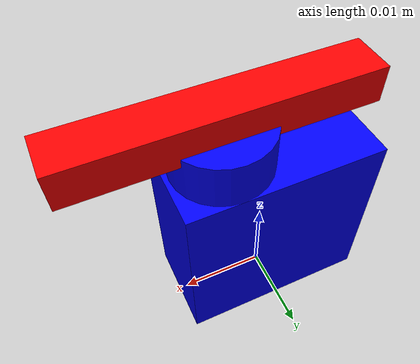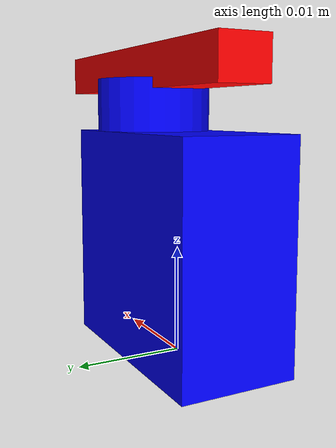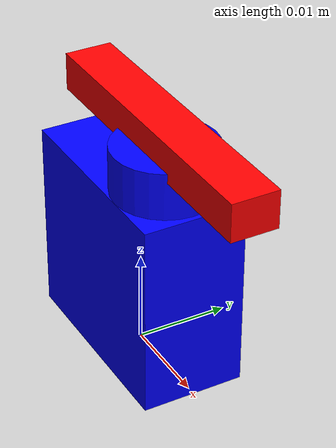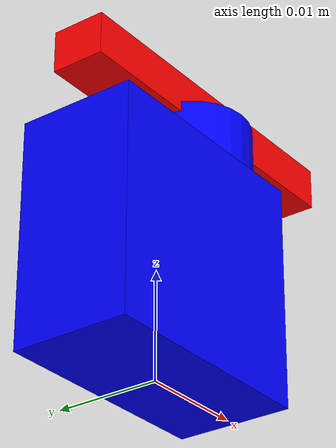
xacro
<?xml version="1.0"?>
<!-- S90 - servo motor -->

<robot xmlns:xacro="http://www.ros.org/wiki/xacro" name="S90_servo">
  <xacro:arg name="prefix" default="" />

  <!-- Import micro_servo S90 macro -->
  <xacro:include filename="$(find ros2_servo_motion)/urdf/servo.urdf.xacro" />

  <!-- Import RRBot ros2_control description -->
  <xacro:include filename="$(find ros2_servo_motion)/urdf/servo.ros2_control.xacro" />

  <!-- Used for fixing robot -->
  <link name="world"/>

  <xacro:micro_servo parent="world" prefix="$(arg prefix)">
    <origin xyz="0 0 0" rpy="0 0 0" />
  </xacro:micro_servo>

  <xacro:S90_servo_ros2_control
    name="S90_servo_control"/>

</robot>

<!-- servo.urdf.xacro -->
<robot xmlns:xacro="http://ros.org/wiki/xacro">

  <xacro:macro name="micro_servo" params="parent prefix *origin">

  <!-- Physical Material Macros -->
  <material name="Red">
    <color rgba="1.0 0 0 1.0" />
  </material>
  <material name="Green">
    <color rgba="0 1.0 0 1.0" />
  </material>
  <material name="Blue">
    <color rgba="0 0 1.0 1" />
  </material>
  <material name="Black">
    <color rgba="0 0 0 1.0" />
  </material>

  <xacro:property name="servo_length" value="0.022" />
  <xacro:property name="servo_width" value="0.011" />
  <xacro:property name="servo_heigth" value="0.021" />
  <xacro:property name="support_radius" value="${servo_width/2}" />
  <xacro:property name="support_heigth" value="0.005" />
  <xacro:property name="rot_link_length" value="0.032" />
  <xacro:property name="rot_link_width" value="0.005" />
  <xacro:property name="rot_link_heigth" value="0.004" />

  <joint name="${prefix}base_joint" type="fixed">
    <xacro:insert_block name="origin" />
    <parent link="${parent}"/>
    <child link="${prefix}base_link" />
  </joint>

  <!-- Base Link -->
  <link name="base_link">
    <visual>
      <geometry>
        <box size="${servo_length} ${servo_width} ${servo_heigth}" />
      </geometry>
      <origin xyz="0 0 ${servo_heigth/2}" rpy="0 0 0" />
      <material name="Blue" />
    </visual>
    <collision>
      <geometry>
        <box size="${servo_length} ${servo_width} ${servo_heigth}" />
      </geometry>
      <origin xyz="0 0 ${servo_heigth/2}" rpy="0 0 0" />
      <material name="Blue" />
    </collision>
  </link>

  <link name="support_link">
    <visual>
      <origin xyz="0 0 ${support_heigth/2}" rpy="0 0 0" />
      <geometry>
        <cylinder radius="${support_radius}" length="${support_heigth}" />
      </geometry>
      <material name="Blue" />
    </visual>
    <collision>
      <origin xyz="0 0 ${support_heigth/2}" rpy="0 0 0" />
      <geometry>
        <cylinder radius="${support_radius}" length="${support_heigth}" />
      </geometry>
      <material name="Blue" />
    </collision>
  </link>
  <joint name="base_to_support" type="fixed">
    <parent link="base_link" />
    <child link="support_link" />
    <origin xyz="0.005 0 ${servo_heigth}" rpy="0 0 0" />
  </joint>

  <link name="rot_link">
    <visual>
      <origin xyz="0 0 ${rot_link_heigth/2}" rpy="0 0 0" />
      <geometry>
        <box size="${rot_link_length} ${rot_link_width} ${rot_link_heigth}" />
      </geometry>
      <material name="Red" />
    </visual>
    <collision>
      <origin xyz="0 0 ${rot_link_heigth/2}" rpy="0 0 0" />
      <geometry>
        <box size="${rot_link_length} ${rot_link_width} ${rot_link_heigth}" />
      </geometry>
      <material name="Red" />
    </collision>
  </link>
  <joint name="support_to_rot_link" type="revolute">
    <parent link="support_link" />
    <child link="rot_link" />
    <axis xyz="0 0 1"/>
    <origin xyz="0 0 ${rot_link_heigth}" rpy="0 0 0" />
    <limit lower="0" upper="${pi}" effort="1000" velocity="100"/>
  </joint>

</xacro:macro>

</robot>
